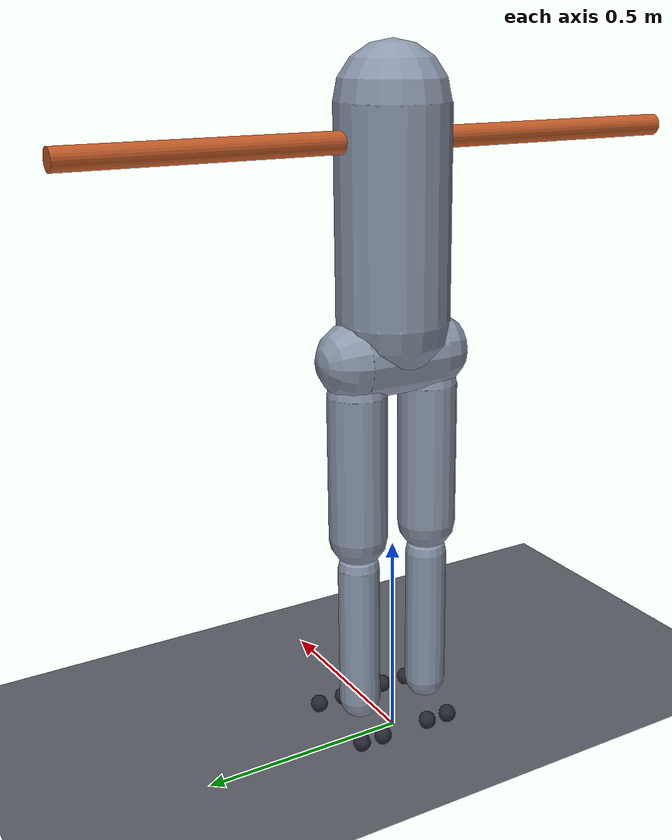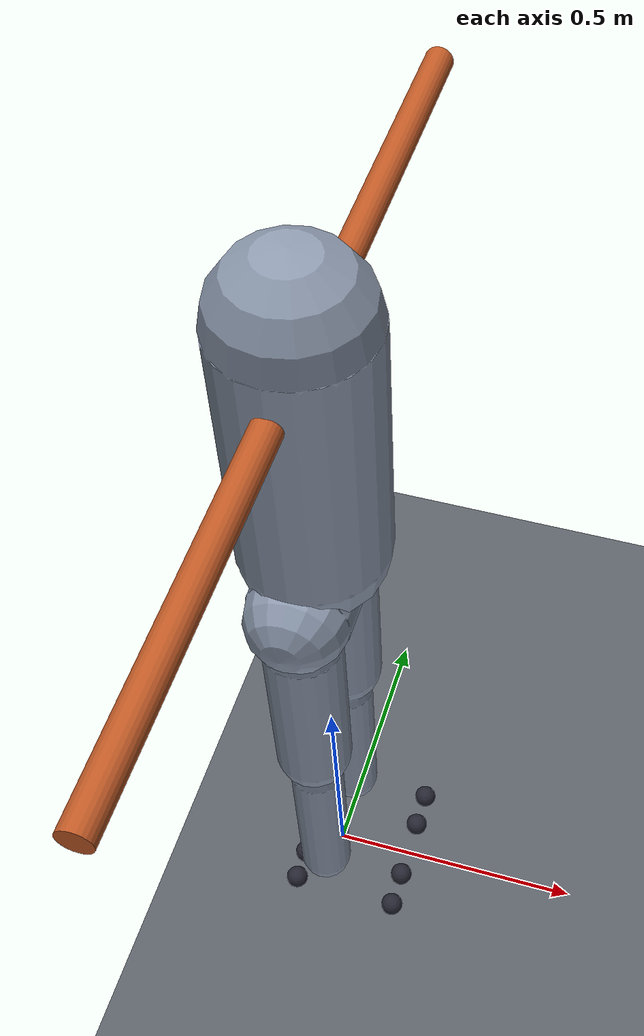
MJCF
<mujoco model="loaded_jump_athlete">

  <compiler angle="radian" coordinate="local" inertiafromgeom="false"
            eulerseq="xyz" autolimits="true"/>

  <!-- CONTACT_AND_NUMERICAL_CONTRACT.md section 2: the one exact profile. -->
  <option timestep="0.000125"
          integrator="implicitfast"
          solver="Newton"
          iterations="100"
          ls_iterations="50"
          tolerance="1e-10"
          ls_tolerance="0.01"
          cone="elliptic"
          impratio="10.0"
          jacobian="dense"
          gravity="0 0 -9.81">
    <flag warmstart="enable"/>
  </option>

  <default>
    <!-- PASSIVE_MECHANICS_CONTRACT.md section 2.3: native joint-limit barrier. -->
    <joint limited="true" solreflimit="0.010 1.0" solimplimit="0.90 0.98 0.010 0.5 2.0"/>
    <geom condim="3" margin="0.0" gap="0.0" priority="0"
          solref="0.004 1.0" solimp="0.99 0.99 0.001 0.5 2.0"/>
    <motor ctrllimited="true" forcelimited="true"/>

    <!-- collision_groups_and_exclusions: bodies pair only with the floor. -->
    <default class="pad">
      <geom type="sphere" size="0.022" contype="2" conaffinity="1"
            friction="0.9 0.005 0.0001" rgba="0.15 0.15 0.20 1"/>
    </default>
    <default class="shell">
      <geom contype="2" conaffinity="1"
            friction="0.5 0.005 0.0001" rgba="0.55 0.60 0.68 1"/>
    </default>
  </default>

  <worldbody>
    <light name="key" pos="1.5 -1.5 3.0" dir="-0.4 0.4 -1" directional="true"/>

    <geom name="floor" type="plane" pos="0 0 0" size="0 0 0.05"
          contype="1" conaffinity="2"
          friction="0.9 0.005 0.0001"
          solref="0.004 1.0" solimp="0.99 0.99 0.001 0.5 2.0"
          margin="0.0" gap="0.0" condim="3" priority="0"
          rgba="0.35 0.37 0.40 1"/>

    <!-- ================= pelvis (body 1) : the floating base ================= -->
    <body name="pelvis" pos="0 0 0.930" quat="1 0 0 0">
      <joint name="root" type="free" limited="false"
             stiffness="0" damping="0" armature="0"/>
      <inertial pos="0 0 0.070" quat="1 0 0 0" mass="10.6500"
                diaginertia="0.086975 0.040115 0.092300"/>
      <geom name="pelvis_shell" class="shell" type="capsule"
            fromto="0 -0.100 0.040 0 0.100 0.040" size="0.090"/>

      <!-- ============ torso_head_arms (body 2) : lumbar ball joint ============ -->
      <body name="torso_head_arms" pos="0 0 0.100" quat="1 0 0 0">
        <joint name="lumbar" type="ball" range="0 1.1000" limited="true"
               stiffness="30.0" damping="6.0" armature="0.050"/>
        <inertial pos="0 0 0.260" quat="1 0 0 0" mass="40.2000"
                  diaginertia="1.721900 1.480700 0.627120"/>
        <geom name="torso_shell" class="shell" type="capsule"
              fromto="0 0 0.020 0 0 0.500" size="0.130"/>

        <!-- ===== external_load (body 3) : RIGID, jointless, 20.0 kg ===== -->
        <body name="external_load" pos="0 0 0.420" quat="1 0 0 0">
          <!-- Selected owner-default surrogate: 1.50 m x 0.05 m transverse
               homogeneous cylinder, with its principal axis along trunk +y. -->
          <inertial pos="0 0 0" quat="1 0 0 0" mass="20.0000"
                    diaginertia="3.753125 0.006250 3.753125"/>
          <geom name="load_shell" class="shell" type="cylinder"
                size="0.025 0.750"
                quat="0.7071067811865476 -0.7071067811865475 0 0"
                rgba="0.75 0.35 0.15 1"/>
        </body>
      </body>

      <!-- ================== left leg : thigh / shank / foot ================== -->
      <body name="left_thigh" pos="0 0.095 0" quat="1 0 0 0">
        <joint name="left_hip" type="ball" range="0 2.4000" limited="true"
               stiffness="20.0" damping="5.0" armature="0.050"/>
        <inertial pos="0 0 -0.186" quat="1 0 0 0" mass="7.5000"
                  diaginertia="0.126109 0.126109 0.021094"/>
        <geom name="left_thigh_shell" class="shell" type="capsule"
              fromto="0 0 -0.040 0 0 -0.390" size="0.070"/>

        <body name="left_shank" pos="0 0 -0.430" quat="1 0 0 0">
          <joint name="left_knee_flexion" type="hinge" axis="0 -1 0"
                 range="-0.0873 2.4435" limited="true"
                 stiffness="12.0" damping="3.0" armature="0.030"
                 springref="0.2967"/>
          <inertial pos="0 0 -0.186" quat="1 0 0 0" mass="3.4875"
                    diaginertia="0.056374 0.056374 0.005275"/>
          <geom name="left_shank_shell" class="shell" type="capsule"
                fromto="0 0 -0.040 0 0 -0.390" size="0.050"/>

          <body name="left_foot" pos="0 0 -0.430" quat="1 0 0 0">
            <joint name="left_ankle_dorsiflexion" type="hinge" axis="0 1 0"
                   range="-0.8727 0.5236" limited="true"
                   stiffness="10.0" damping="2.0" armature="0.012"
                   springref="0.0873"/>
            <joint name="left_ankle_eversion" type="hinge" axis="1 0 0"
                   range="-0.3491 0.2618" limited="true"
                   stiffness="15.0" damping="1.5" armature="0.008"
                   springref="0.0"/>
            <inertial pos="0.060 0 -0.030" quat="1 0 0 0" mass="1.0875"
                      diaginertia="0.001262 0.006570 0.006944"/>
            <!-- medial on the LEFT foot (y > 0 side) is -y -->
            <geom name="left_pad_heel_medial"  class="pad" pos="-0.060 -0.030 -0.048"/>
            <geom name="left_pad_heel_lateral" class="pad" pos="-0.060  0.030 -0.048"/>
            <geom name="left_pad_fore_medial"  class="pad" pos=" 0.150 -0.035 -0.048"/>
            <geom name="left_pad_fore_lateral" class="pad" pos=" 0.150  0.035 -0.048"/>
          </body>
        </body>
      </body>

      <!-- ================= right leg : thigh / shank / foot ================= -->
      <body name="right_thigh" pos="0 -0.095 0" quat="1 0 0 0">
        <joint name="right_hip" type="ball" range="0 2.4000" limited="true"
               stiffness="20.0" damping="5.0" armature="0.050"/>
        <inertial pos="0 0 -0.186" quat="1 0 0 0" mass="7.5000"
                  diaginertia="0.126109 0.126109 0.021094"/>
        <geom name="right_thigh_shell" class="shell" type="capsule"
              fromto="0 0 -0.040 0 0 -0.390" size="0.070"/>

        <body name="right_shank" pos="0 0 -0.430" quat="1 0 0 0">
          <joint name="right_knee_flexion" type="hinge" axis="0 -1 0"
                 range="-0.0873 2.4435" limited="true"
                 stiffness="12.0" damping="3.0" armature="0.030"
                 springref="0.2967"/>
          <inertial pos="0 0 -0.186" quat="1 0 0 0" mass="3.4875"
                    diaginertia="0.056374 0.056374 0.005275"/>
          <geom name="right_shank_shell" class="shell" type="capsule"
                fromto="0 0 -0.040 0 0 -0.390" size="0.050"/>

          <body name="right_foot" pos="0 0 -0.430" quat="1 0 0 0">
            <joint name="right_ankle_dorsiflexion" type="hinge" axis="0 1 0"
                   range="-0.8727 0.5236" limited="true"
                   stiffness="10.0" damping="2.0" armature="0.012"
                   springref="0.0873"/>
            <joint name="right_ankle_eversion" type="hinge" axis="1 0 0"
                   range="-0.3491 0.2618" limited="true"
                   stiffness="15.0" damping="1.5" armature="0.008"
                   springref="0.0"/>
            <inertial pos="0.060 0 -0.030" quat="1 0 0 0" mass="1.0875"
                      diaginertia="0.001262 0.006570 0.006944"/>
            <!-- medial on the RIGHT foot (y < 0 side) is +y : y is mirrored -->
            <geom name="right_pad_heel_medial"  class="pad" pos="-0.060  0.030 -0.048"/>
            <geom name="right_pad_heel_lateral" class="pad" pos="-0.060 -0.030 -0.048"/>
            <geom name="right_pad_fore_medial"  class="pad" pos=" 0.150  0.035 -0.048"/>
            <geom name="right_pad_fore_lateral" class="pad" pos=" 0.150 -0.035 -0.048"/>
          </body>
        </body>
      </body>
    </body>
  </worldbody>

  <contact>
    <exclude body1="pelvis" body2="torso_head_arms"/>
    <exclude body1="pelvis" body2="external_load"/>
    <exclude body1="pelvis" body2="left_thigh"/>
    <exclude body1="pelvis" body2="right_thigh"/>
    <exclude body1="torso_head_arms" body2="external_load"/>
    <exclude body1="left_thigh" body2="left_shank"/>
    <exclude body1="right_thigh" body2="right_shank"/>
    <exclude body1="left_shank" body2="left_foot"/>
    <exclude body1="right_shank" body2="right_foot"/>
  </contact>

  <actuator>
    <motor name="mj_lumbar_tx"   joint="lumbar"   gear="1 0 0" ctrlrange="-410 410" forcerange="-410 410"/>
    <motor name="mj_lumbar_ty"   joint="lumbar"   gear="0 1 0" ctrlrange="-410 410" forcerange="-410 410"/>
    <motor name="mj_lumbar_tz"   joint="lumbar"   gear="0 0 1" ctrlrange="-410 410" forcerange="-410 410"/>

    <motor name="mj_left_hip_tx"  joint="left_hip"  gear="1 0 0" ctrlrange="-450 450" forcerange="-450 450"/>
    <motor name="mj_left_hip_ty"  joint="left_hip"  gear="0 1 0" ctrlrange="-450 450" forcerange="-450 450"/>
    <motor name="mj_left_hip_tz"  joint="left_hip"  gear="0 0 1" ctrlrange="-450 450" forcerange="-450 450"/>

    <motor name="mj_right_hip_tx" joint="right_hip" gear="1 0 0" ctrlrange="-450 450" forcerange="-450 450"/>
    <motor name="mj_right_hip_ty" joint="right_hip" gear="0 1 0" ctrlrange="-450 450" forcerange="-450 450"/>
    <motor name="mj_right_hip_tz" joint="right_hip" gear="0 0 1" ctrlrange="-450 450" forcerange="-450 450"/>

    <motor name="mj_left_knee_flexion"        joint="left_knee_flexion"        gear="1" ctrlrange="-300 140" forcerange="-300 140"/>
    <motor name="mj_right_knee_flexion"       joint="right_knee_flexion"       gear="1" ctrlrange="-300 140" forcerange="-300 140"/>
    <motor name="mj_left_ankle_dorsiflexion"  joint="left_ankle_dorsiflexion"  gear="1" ctrlrange="-220  50" forcerange="-220  50"/>
    <motor name="mj_right_ankle_dorsiflexion" joint="right_ankle_dorsiflexion" gear="1" ctrlrange="-220  50" forcerange="-220  50"/>
    <motor name="mj_left_ankle_eversion"      joint="left_ankle_eversion"      gear="1" ctrlrange="-40   40" forcerange="-40   40"/>
    <motor name="mj_right_ankle_eversion"     joint="right_ankle_eversion"     gear="1" ctrlrange="-40   40" forcerange="-40   40"/>
  </actuator>

</mujoco>
